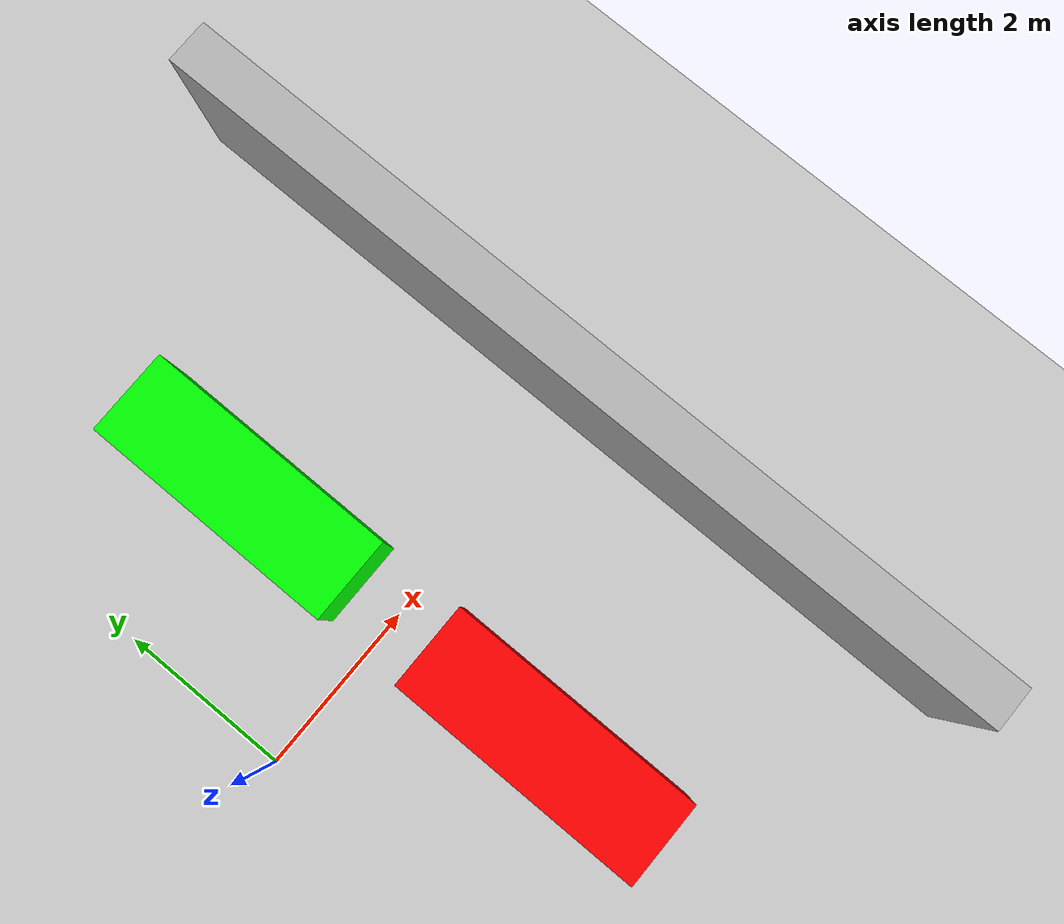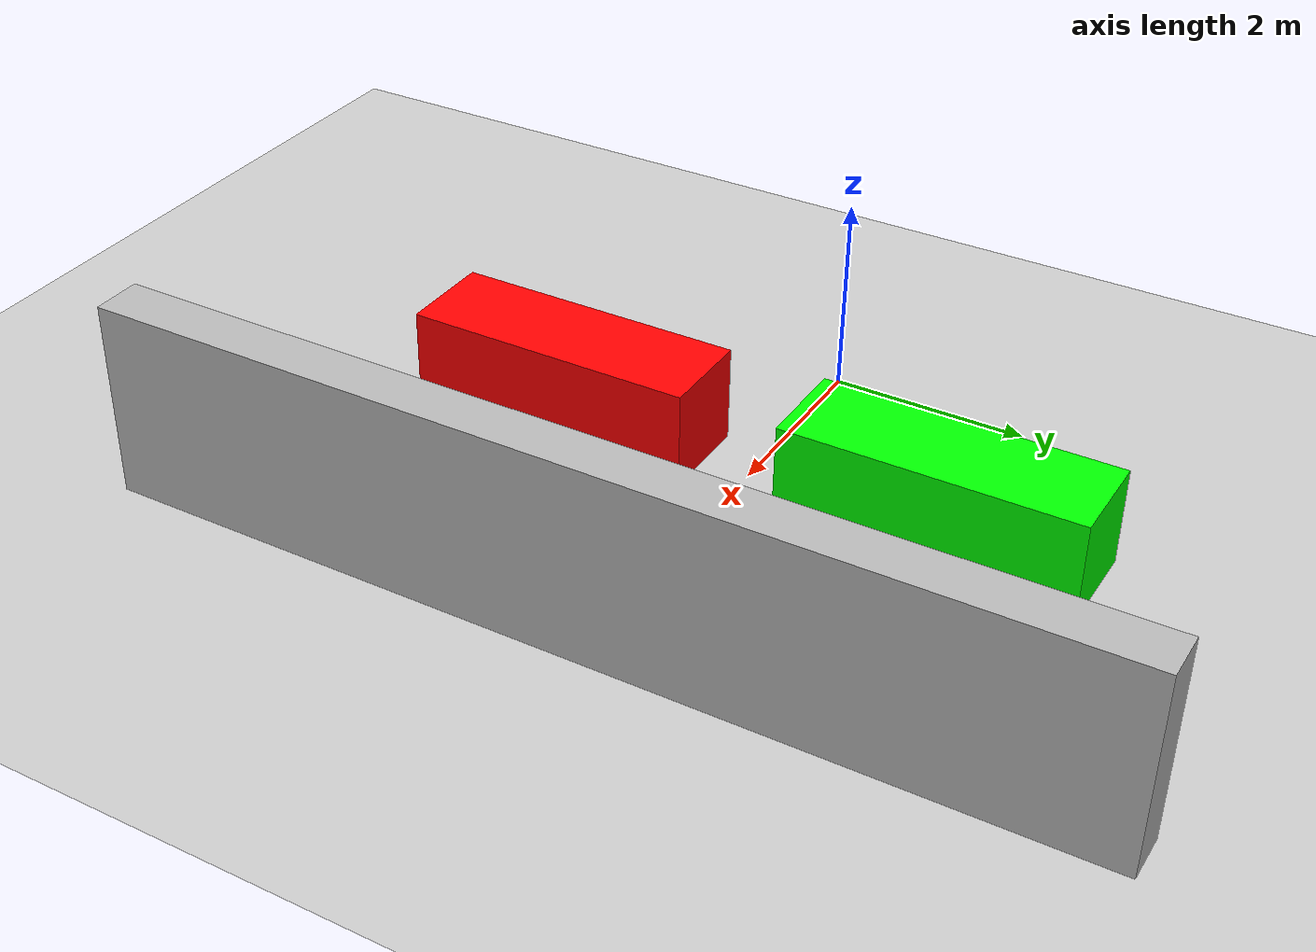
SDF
<?xml version="1.0" ?>
<sdf version="1.8">
  <world name="warehouse">

    <physics name="1ms" type="ignored">
      <max_step_size>0.001</max_step_size>
      <real_time_factor>1.0</real_time_factor>
    </physics>
    <plugin
      filename="gz-sim-physics-system"
      name="gz::sim::systems::Physics">
    </plugin>
    <plugin
      filename="gz-sim-user-commands-system"
      name="gz::sim::systems::UserCommands">
    </plugin>
    <plugin
      filename="gz-sim-scene-broadcaster-system"
      name="gz::sim::systems::SceneBroadcaster">
    </plugin>

    <plugin
      filename="gz-sim-sensors-system"
      name="gz::sim::systems::Sensors">
      <render_engine>ogre2</render_engine>
    </plugin>

    <light type="directional" name="sun">
      <cast_shadows>true</cast_shadows>
      <pose>0 0 10 0 0 0</pose>
      <diffuse>0.8 0.8 0.8 1</diffuse>
      <specular>0.2 0.2 0.2 1</specular>
      <attenuation>
        <range>1000</range>
        <constant>0.9</constant>
        <linear>0.01</linear>
        <quadratic>0.001</quadratic>
      </attenuation>
      <direction>-0.5 0.1 -0.9</direction>
    </light>

    <model name="ground_plane">
      <static>true</static>
      <link name="link">
        <collision name="collision">
          <geometry>
            <plane>
              <normal>0 0 1</normal>
              <size>100 100</size>
            </plane>
          </geometry>
        </collision>
        <visual name="visual">
          <geometry>
            <plane>
              <normal>0 0 1</normal>
              <size>100 100</size>
            </plane>
          </geometry>
          <material>
            <ambient>0.8 0.8 0.8 1</ambient>
            <diffuse>0.8 0.8 0.8 1</diffuse>
            <specular>0.8 0.8 0.8 1</specular>
          </material>
        </visual>
      </link>
    </model>

    <model name="shelf_a">
      <static>true</static>
      <pose>2 2 0.5 0 0 0</pose>
      <link name="link">
        <collision name="collision">
          <geometry>
            <box>
              <size>1 3 1</size>
            </box>
          </geometry>
        </collision>
        <visual name="visual">
          <geometry>
            <box>
              <size>1 3 1</size>
            </box>
          </geometry>
          <material>
            <ambient>0 1 0 1</ambient>
            <diffuse>0 1 0 1</diffuse>
          </material>
        </visual>
      </link>
    </model>

    <model name="shelf_b">
      <static>true</static>
      <pose>2 -2 0.5 0 0 0</pose>
      <link name="link">
        <collision name="collision">
          <geometry>
            <box>
              <size>1 3 1</size>
            </box>
          </geometry>
        </collision>
        <visual name="visual">
          <geometry>
            <box>
              <size>1 3 1</size>
            </box>
          </geometry>
          <material>
            <ambient>1 0 0 1</ambient>
            <diffuse>1 0 0 1</diffuse>
          </material>
        </visual>
      </link>
    </model>

    <model name="wall_back">
      <static>true</static>
      <pose>5 0 1 0 0 0</pose>
      <link name="link">
        <visual name="visual">
          <geometry><box><size>0.5 10 2</size></box></geometry>
        </visual>
        <collision name="collision">
          <geometry><box><size>0.5 10 2</size></box></geometry>
        </collision>
      </link>
    </model>

  </world>
</sdf>
